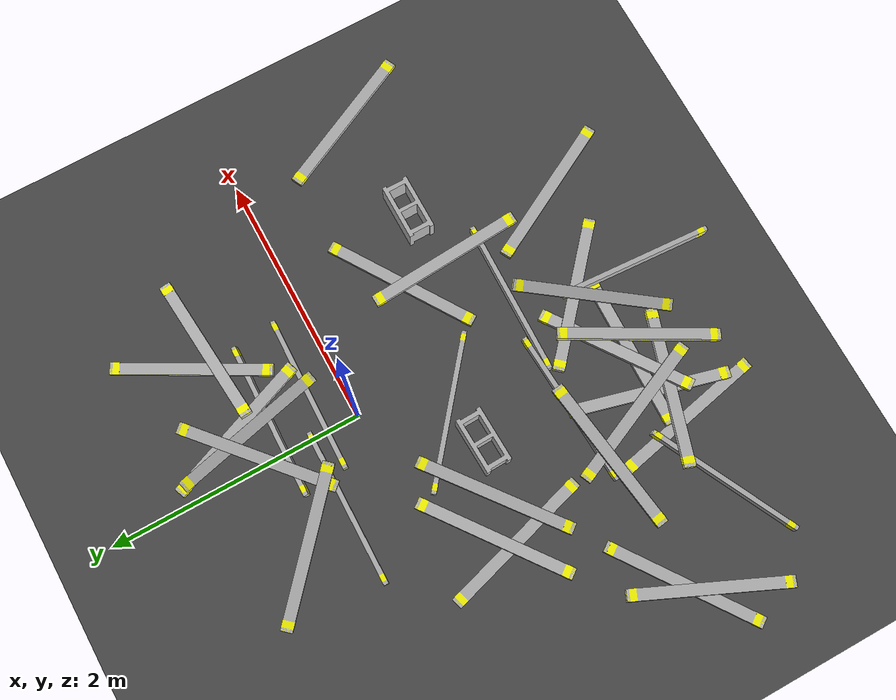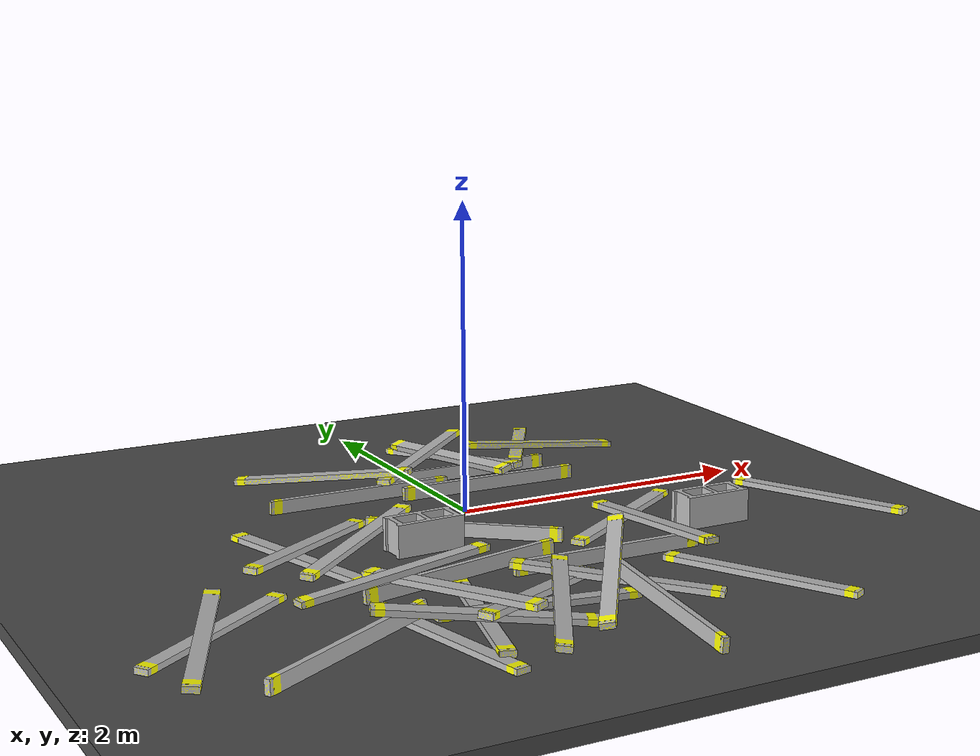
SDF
<sdf version="1.6">
 <world name="default">
  <light name="sun" type="directional">
   <pose>0 0 10 0 -0 0</pose>
   <diffuse>0.8 0.8 0.8 1</diffuse>
   <specular>0.1 0.1 0.1 1</specular>
   <attenuation>
    <range>1000</range>
    <constant>0.9</constant>
    <linear>0.01</linear>
    <quadratic>0.001</quadratic>
   </attenuation>
   <direction>-0.5 0.5 -1</direction>
  </light>
  <model name="ground_plane">
   <static>1</static>
   <link name="link">
    <collision name="collision">
     <geometry><plane><normal>0 0 1</normal><size>100 100</size></plane></geometry>
     <surface><friction><ode><mu>100</mu><mu2>50</mu2></ode></friction></surface>
    </collision>
    <visual name="visual">
     <cast_shadows>0</cast_shadows>
     <geometry><plane><normal>0 0 1</normal><size>100 100</size></plane></geometry>
     <material>
      <script><uri>file://media/materials/scripts/gazebo.material</uri><name>Gazebo/Grey</name></script>
     </material>
    </visual>
   </link>
  </model>
  <gravity>0 0 -9.8</gravity>
  <magnetic_field>6e-06 2.3e-05 -4.2e-05</magnetic_field>
  <atmosphere type="adiabatic"/>
  <physics name="default_physics" default="0" type="ode">
   <max_step_size>0.001</max_step_size>
   <real_time_factor>1</real_time_factor>
   <real_time_update_rate>1000</real_time_update_rate>
  </physics>
  <scene><ambient>0.4 0.4 0.4 1</ambient><background>0.7 0.7 0.7 1</background><shadows>1</shadows></scene>
  <spherical_coordinates>
   <surface_model>EARTH_WGS84</surface_model>
   <latitude_deg>0</latitude_deg>
   <longitude_deg>0</longitude_deg>
   <elevation>0</elevation>
   <heading_deg>0</heading_deg>
  </spherical_coordinates>
  <model name="asphalt_plane">
   <static>1</static>
   <link name="link">
    <collision name="collision"><geometry><box><size>20 20 0.1</size></box></geometry></collision>
    <visual name="visual">
     <cast_shadows>0</cast_shadows>
     <geometry><box><size>20 20 0.1</size></box></geometry>
     <material>
      <script>
       <uri>model://asphalt_plane/materials/scripts</uri>
       <uri>model://asphalt_plane/materials/textures</uri>
       <name>vrc/asphalt</name>
      </script>
     </material>
    </visual>
   </link>
   <pose>-0.111645 0.027228 0 0 -0 0</pose>
  </model>
  <model name="lumber_2x4x48">
   <link name="link">
    <inertial>
     <mass>1.4111</mass>
     <inertia><ixx>0.0011</ixx><ixy>0</ixy><ixz>0</ixz><iyy>0.1771</iyy><iyz>0</iyz><izz>0.1763</izz></inertia>
    </inertial>
    <collision name="collision">
     <geometry><box><size>1.2192 0.038 0.0888</size></box></geometry>
     <surface>
      <bounce><restitution_coefficient>0.01</restitution_coefficient><threshold>5</threshold></bounce>
      <friction><ode><mu>5</mu><mu2>5</mu2></ode></friction>
      <contact>
       <ode>
        <soft_cfm>0.001</soft_cfm>
        <kp>10000</kp>
        <kd>1000</kd>
        <max_vel>0.01</max_vel>
        <min_depth>0.001</min_depth>
       </ode>
      </contact>
     </surface>
    </collision>
    <visual name="visual">
     <geometry><mesh><uri>model://drc_practice_2x4/meshes/2x4x48.dae</uri><scale>1 1 1</scale></mesh></geometry>
    </visual>
   </link>
   <pose>0.297514 0.248297 0.093055 0 0 -0.025615</pose>
  </model>
  <model name="lumber_2x4x48_clone">
   <link name="link">
    <inertial>
     <mass>1.4111</mass>
     <inertia><ixx>0.0011</ixx><ixy>0</ixy><ixz>0</ixz><iyy>0.1771</iyy><iyz>0</iyz><izz>0.1763</izz></inertia>
    </inertial>
    <collision name="collision">
     <geometry><box><size>1.2192 0.038 0.0888</size></box></geometry>
     <surface>
      <bounce><restitution_coefficient>0.01</restitution_coefficient><threshold>5</threshold></bounce>
      <friction><ode><mu>5</mu><mu2>5</mu2></ode></friction>
      <contact>
       <ode>
        <soft_cfm>0.001</soft_cfm>
        <kp>10000</kp>
        <kd>1000</kd>
        <max_vel>0.01</max_vel>
        <min_depth>0.001</min_depth>
       </ode>
      </contact>
     </surface>
    </collision>
    <visual name="visual">
     <geometry><mesh><uri>model://drc_practice_2x4/meshes/2x4x48.dae</uri><scale>1 1 1</scale></mesh></geometry>
    </visual>
   </link>
   <pose>-0.563588 0.384589 0.092772 -0.003394 9.7e-05 -0.013561</pose>
  </model>
  <model name="lumber_2x4x48_clone_1">
   <link name="link">
    <inertial>
     <mass>1.4111</mass>
     <inertia><ixx>0.0011</ixx><ixy>0</ixy><ixz>0</ixz><iyy>0.1771</iyy><iyz>0</iyz><izz>0.1763</izz></inertia>
    </inertial>
    <collision name="collision">
     <geometry><box><size>1.2192 0.038 0.0888</size></box></geometry>
     <surface>
      <bounce><restitution_coefficient>0.01</restitution_coefficient><threshold>5</threshold></bounce>
      <friction><ode><mu>5</mu><mu2>5</mu2></ode></friction>
      <contact>
       <ode>
        <soft_cfm>0.001</soft_cfm>
        <kp>10000</kp>
        <kd>1000</kd>
        <max_vel>0.01</max_vel>
        <min_depth>0.001</min_depth>
       </ode>
      </contact>
     </surface>
    </collision>
    <visual name="visual">
     <geometry><mesh><uri>model://drc_practice_2x4/meshes/2x4x48.dae</uri><scale>1 1 1</scale></mesh></geometry>
    </visual>
   </link>
   <pose>0.259993 0.583404 0.091052 -0.099377 0.00131 -0.023</pose>
  </model>
  <model name="lumber_2x4x48_clone_3_clone">
   <link name="link">
    <inertial>
     <mass>1.4111</mass>
     <inertia><ixx>0.0011</ixx><ixy>0</ixy><ixz>0</ixz><iyy>0.1771</iyy><iyz>0</iyz><izz>0.1763</izz></inertia>
    </inertial>
    <collision name="collision">
     <geometry><box><size>1.2192 0.038 0.0888</size></box></geometry>
     <surface>
      <bounce><restitution_coefficient>0.01</restitution_coefficient><threshold>5</threshold></bounce>
      <friction><ode><mu>5</mu><mu2>5</mu2></ode></friction>
      <contact>
       <ode>
        <soft_cfm>0.001</soft_cfm>
        <kp>10000</kp>
        <kd>1000</kd>
        <max_vel>0.01</max_vel>
        <min_depth>0.001</min_depth>
       </ode>
      </contact>
     </surface>
    </collision>
    <visual name="visual">
     <geometry><mesh><uri>model://drc_practice_2x4/meshes/2x4x48.dae</uri><scale>1 1 1</scale></mesh></geometry>
    </visual>
   </link>
   <pose>-0.673883 0.752799 0.140814 1.59271 -0.119332 -0.740059</pose>
  </model>
  <model name="lumber_2x4x48_clone_3_clone_0">
   <link name="link">
    <inertial>
     <mass>1.4111</mass>
     <inertia><ixx>0.0011</ixx><ixy>0</ixy><ixz>0</ixz><iyy>0.1771</iyy><iyz>0</iyz><izz>0.1763</izz></inertia>
    </inertial>
    <collision name="collision">
     <geometry><box><size>1.2192 0.038 0.0888</size></box></geometry>
     <surface>
      <bounce><restitution_coefficient>0.01</restitution_coefficient><threshold>5</threshold></bounce>
      <friction><ode><mu>5</mu><mu2>5</mu2></ode></friction>
      <contact>
       <ode>
        <soft_cfm>0.001</soft_cfm>
        <kp>10000</kp>
        <kd>1000</kd>
        <max_vel>0.01</max_vel>
        <min_depth>0.001</min_depth>
       </ode>
      </contact>
     </surface>
    </collision>
    <visual name="visual">
     <geometry><mesh><uri>model://drc_practice_2x4/meshes/2x4x48.dae</uri><scale>1 1 1</scale></mesh></geometry>
    </visual>
   </link>
   <pose>0.053443 0.776744 0.177458 1.48105 -0.03515 0.721091</pose>
  </model>
  <model name="lumber_2x4x48_clone_1_clone">
   <link name="link">
    <inertial>
     <mass>1.4111</mass>
     <inertia><ixx>0.0011</ixx><ixy>0</ixy><ixz>0</ixz><iyy>0.1771</iyy><iyz>0</iyz><izz>0.1763</izz></inertia>
    </inertial>
    <collision name="collision">
     <geometry><box><size>1.2192 0.038 0.0888</size></box></geometry>
     <surface>
      <bounce><restitution_coefficient>0.01</restitution_coefficient><threshold>5</threshold></bounce>
      <friction><ode><mu>5</mu><mu2>5</mu2></ode></friction>
      <contact>
       <ode>
        <soft_cfm>0.001</soft_cfm>
        <kp>10000</kp>
        <kd>1000</kd>
        <max_vel>0.01</max_vel>
        <min_depth>0.001</min_depth>
       </ode>
      </contact>
     </surface>
    </collision>
    <visual name="visual">
     <geometry><mesh><uri>model://drc_practice_2x4/meshes/2x4x48.dae</uri><scale>1 1 1</scale></mesh></geometry>
    </visual>
   </link>
   <pose>-0.549988 -1.97698 0.098562 -1.58522 0.049913 -0.035043</pose>
  </model>
  <model name="lumber_2x4x48_clone_3_clone_0_clone_0_clone">
   <link name="link">
    <inertial>
     <mass>1.4111</mass>
     <inertia><ixx>0.0011</ixx><ixy>0</ixy><ixz>0</ixz><iyy>0.1771</iyy><iyz>0</iyz><izz>0.1763</izz></inertia>
    </inertial>
    <collision name="collision">
     <geometry><box><size>1.2192 0.038 0.0888</size></box></geometry>
     <surface>
      <bounce><restitution_coefficient>0.01</restitution_coefficient><threshold>5</threshold></bounce>
      <friction><ode><mu>5</mu><mu2>5</mu2></ode></friction>
      <contact>
       <ode>
        <soft_cfm>0.001</soft_cfm>
        <kp>10000</kp>
        <kd>1000</kd>
        <max_vel>0.01</max_vel>
        <min_depth>0.001</min_depth>
       </ode>
      </contact>
     </surface>
    </collision>
    <visual name="visual">
     <geometry><mesh><uri>model://drc_practice_2x4/meshes/2x4x48.dae</uri><scale>1 1 1</scale></mesh></geometry>
    </visual>
   </link>
   <pose>-0.493762 -1.87892 0.127584 1.58993 0.099827 0.591171</pose>
  </model>
  <model name="lumber_2x4x48_clone_3_clone_0_clone_0_clone_0">
   <link name="link">
    <inertial>
     <mass>1.4111</mass>
     <inertia><ixx>0.0011</ixx><ixy>0</ixy><ixz>0</ixz><iyy>0.1771</iyy><iyz>0</iyz><izz>0.1763</izz></inertia>
    </inertial>
    <collision name="collision">
     <geometry><box><size>1.2192 0.038 0.0888</size></box></geometry>
     <surface>
      <bounce><restitution_coefficient>0.01</restitution_coefficient><threshold>5</threshold></bounce>
      <friction><ode><mu>5</mu><mu2>5</mu2></ode></friction>
      <contact>
       <ode>
        <soft_cfm>0.001</soft_cfm>
        <kp>10000</kp>
        <kd>1000</kd>
        <max_vel>0.01</max_vel>
        <min_depth>0.001</min_depth>
       </ode>
      </contact>
     </surface>
    </collision>
    <visual name="visual">
     <geometry><mesh><uri>model://drc_practice_2x4/meshes/2x4x48.dae</uri><scale>1 1 1</scale></mesh></geometry>
    </visual>
   </link>
   <pose>0.022921 -1.83228 0.107711 1.57632 -0.066092 2.41368</pose>
  </model>
  <model name="lumber_2x4x48_clone_3_clone_0_clone_0_clone_0_clone">
   <link name="link">
    <inertial>
     <mass>1.4111</mass>
     <inertia><ixx>0.0011</ixx><ixy>0</ixy><ixz>0</ixz><iyy>0.1771</iyy><iyz>0</iyz><izz>0.1763</izz></inertia>
    </inertial>
    <collision name="collision">
     <geometry><box><size>1.2192 0.038 0.0888</size></box></geometry>
     <surface>
      <bounce><restitution_coefficient>0.01</restitution_coefficient><threshold>5</threshold></bounce>
      <friction><ode><mu>5</mu><mu2>5</mu2></ode></friction>
      <contact>
       <ode>
        <soft_cfm>0.001</soft_cfm>
        <kp>10000</kp>
        <kd>1000</kd>
        <max_vel>0.01</max_vel>
        <min_depth>0.001</min_depth>
       </ode>
      </contact>
     </surface>
    </collision>
    <visual name="visual">
     <geometry><mesh><uri>model://drc_practice_2x4/meshes/2x4x48.dae</uri><scale>1 1 1</scale></mesh></geometry>
    </visual>
   </link>
   <pose>-0.920274 -2.08214 0.138076 1.49302 -0.112652 2.81049</pose>
  </model>
  <model name="lumber_2x4x48_clone_0_clone">
   <link name="link">
    <inertial>
     <mass>1.4111</mass>
     <inertia><ixx>0.0011</ixx><ixy>0</ixy><ixz>0</ixz><iyy>0.1771</iyy><iyz>0</iyz><izz>0.1763</izz></inertia>
    </inertial>
    <collision name="collision">
     <geometry><box><size>1.2192 0.038 0.0888</size></box></geometry>
     <surface>
      <bounce><restitution_coefficient>0.01</restitution_coefficient><threshold>5</threshold></bounce>
      <friction><ode><mu>5</mu><mu2>5</mu2></ode></friction>
      <contact>
       <ode>
        <soft_cfm>0.001</soft_cfm>
        <kp>10000</kp>
        <kd>1000</kd>
        <max_vel>0.01</max_vel>
        <min_depth>0.001</min_depth>
       </ode>
      </contact>
     </surface>
    </collision>
    <visual name="visual">
     <geometry><mesh><uri>model://drc_practice_2x4/meshes/2x4x48.dae</uri><scale>1 1 1</scale></mesh></geometry>
    </visual>
   </link>
   <pose>-0.710721 -1.36611 0.129166 -0.044502 -0.059215 0.07186</pose>
  </model>
  <model name="lumber_2x4x48_clone_0_clone_0">
   <link name="link">
    <inertial>
     <mass>1.4111</mass>
     <inertia><ixx>0.0011</ixx><ixy>0</ixy><ixz>0</ixz><iyy>0.1771</iyy><iyz>0</iyz><izz>0.1763</izz></inertia>
    </inertial>
    <collision name="collision">
     <geometry><box><size>1.2192 0.038 0.0888</size></box></geometry>
     <surface>
      <bounce><restitution_coefficient>0.01</restitution_coefficient><threshold>5</threshold></bounce>
      <friction><ode><mu>5</mu><mu2>5</mu2></ode></friction>
      <contact>
       <ode>
        <soft_cfm>0.001</soft_cfm>
        <kp>10000</kp>
        <kd>1000</kd>
        <max_vel>0.01</max_vel>
        <min_depth>0.001</min_depth>
       </ode>
      </contact>
     </surface>
    </collision>
    <visual name="visual">
     <geometry><mesh><uri>model://drc_practice_2x4/meshes/2x4x48.dae</uri><scale>1 1 1</scale></mesh></geometry>
    </visual>
   </link>
   <pose>0.225297 -1.40197 0.092847 -0.007699 0.000262 -0.02158</pose>
  </model>
  <model name="lumber_2x4x48_clone_3_clone_0_clone_1_clone">
   <link name="link">
    <inertial>
     <mass>1.4111</mass>
     <inertia><ixx>0.0011</ixx><ixy>0</ixy><ixz>0</ixz><iyy>0.1771</iyy><iyz>0</iyz><izz>0.1763</izz></inertia>
    </inertial>
    <collision name="collision">
     <geometry><box><size>1.2192 0.038 0.0888</size></box></geometry>
     <surface>
      <bounce><restitution_coefficient>0.01</restitution_coefficient><threshold>5</threshold></bounce>
      <friction><ode><mu>5</mu><mu2>5</mu2></ode></friction>
      <contact>
       <ode>
        <soft_cfm>0.001</soft_cfm>
        <kp>10000</kp>
        <kd>1000</kd>
        <max_vel>0.01</max_vel>
        <min_depth>0.001</min_depth>
       </ode>
      </contact>
     </surface>
    </collision>
    <visual name="visual">
     <geometry><mesh><uri>model://drc_practice_2x4/meshes/2x4x48.dae</uri><scale>1 1 1</scale></mesh></geometry>
    </visual>
   </link>
   <pose>-0.878042 -1.94517 0.081087 1.60414 0.025548 1.31325</pose>
  </model>
  <model name="lumber_2x4x48_clone_3_clone_0_clone_1_clone_clone">
   <link name="link">
    <inertial>
     <mass>1.4111</mass>
     <inertia><ixx>0.0011</ixx><ixy>0</ixy><ixz>0</ixz><iyy>0.1771</iyy><iyz>0</iyz><izz>0.1763</izz></inertia>
    </inertial>
    <collision name="collision">
     <geometry><box><size>1.2192 0.038 0.0888</size></box></geometry>
     <surface>
      <bounce><restitution_coefficient>0.01</restitution_coefficient><threshold>5</threshold></bounce>
      <friction><ode><mu>5</mu><mu2>5</mu2></ode></friction>
      <contact>
       <ode>
        <soft_cfm>0.001</soft_cfm>
        <kp>10000</kp>
        <kd>1000</kd>
        <max_vel>0.01</max_vel>
        <min_depth>0.001</min_depth>
       </ode>
      </contact>
     </surface>
    </collision>
    <visual name="visual">
     <geometry><mesh><uri>model://drc_practice_2x4/meshes/2x4x48.dae</uri><scale>1 1 1</scale></mesh></geometry>
    </visual>
   </link>
   <pose>0.012018 -2.34739 0.133604 0.030992 -0.0661 1.52363</pose>
  </model>
  <model name="lumber_2x4x48_clone_3_clone_0_clone_1_clone_clone_2">
   <link name="link">
    <inertial>
     <mass>1.4111</mass>
     <inertia><ixx>0.0011</ixx><ixy>0</ixy><ixz>0</ixz><iyy>0.1771</iyy><iyz>0</iyz><izz>0.1763</izz></inertia>
    </inertial>
    <collision name="collision">
     <geometry><box><size>1.2192 0.038 0.0888</size></box></geometry>
     <surface>
      <bounce><restitution_coefficient>0.01</restitution_coefficient><threshold>5</threshold></bounce>
      <friction><ode><mu>5</mu><mu2>5</mu2></ode></friction>
      <contact>
       <ode>
        <soft_cfm>0.001</soft_cfm>
        <kp>10000</kp>
        <kd>1000</kd>
        <max_vel>0.01</max_vel>
        <min_depth>0.001</min_depth>
       </ode>
      </contact>
     </surface>
    </collision>
    <visual name="visual">
     <geometry><mesh><uri>model://drc_practice_2x4/meshes/2x4x48.dae</uri><scale>1 1 1</scale></mesh></geometry>
    </visual>
   </link>
   <pose>-1.6872 -2.07314 0.113039 -0.007854 -0.032759 0.471322</pose>
  </model>
  <model name="lumber_2x4x48_clone_3_clone_0_clone_clone">
   <link name="link">
    <inertial>
     <mass>1.4111</mass>
     <inertia><ixx>0.0011</ixx><ixy>0</ixy><ixz>0</ixz><iyy>0.1771</iyy><iyz>0</iyz><izz>0.1763</izz></inertia>
    </inertial>
    <collision name="collision">
     <geometry><box><size>1.2192 0.038 0.0888</size></box></geometry>
     <surface>
      <bounce><restitution_coefficient>0.01</restitution_coefficient><threshold>5</threshold></bounce>
      <friction><ode><mu>5</mu><mu2>5</mu2></ode></friction>
      <contact>
       <ode>
        <soft_cfm>0.001</soft_cfm>
        <kp>10000</kp>
        <kd>1000</kd>
        <max_vel>0.01</max_vel>
        <min_depth>0.001</min_depth>
       </ode>
      </contact>
     </surface>
    </collision>
    <visual name="visual">
     <geometry><mesh><uri>model://drc_practice_2x4/meshes/2x4x48.dae</uri><scale>1 1 1</scale></mesh></geometry>
    </visual>
   </link>
   <pose>-2.18032 -1.45176 0.067309 1.57859 -0.000151 0.618251</pose>
  </model>
  <model name="lumber_2x4x48_clone_3_clone_0_clone_1_clone_clone_4">
   <link name="link">
    <inertial>
     <mass>1.4111</mass>
     <inertia><ixx>0.0011</ixx><ixy>0</ixy><ixz>0</ixz><iyy>0.1771</iyy><iyz>0</iyz><izz>0.1763</izz></inertia>
    </inertial>
    <collision name="collision">
     <geometry><box><size>1.2192 0.038 0.0888</size></box></geometry>
     <surface>
      <bounce><restitution_coefficient>0.01</restitution_coefficient><threshold>5</threshold></bounce>
      <friction><ode><mu>5</mu><mu2>5</mu2></ode></friction>
      <contact>
       <ode>
        <soft_cfm>0.001</soft_cfm>
        <kp>10000</kp>
        <kd>1000</kd>
        <max_vel>0.01</max_vel>
        <min_depth>0.001</min_depth>
       </ode>
      </contact>
     </surface>
    </collision>
    <visual name="visual">
     <geometry><mesh><uri>model://drc_practice_2x4/meshes/2x4x48.dae</uri><scale>1 1 1</scale></mesh></geometry>
    </visual>
   </link>
   <pose>-0.995869 -0.581913 0.12892 1.58226 -0.058795 0.668529</pose>
  </model>
  <model name="lumber_2x4x48_clone_3_clone_0_clone_1_clone_0">
   <link name="link">
    <inertial>
     <mass>1.4111</mass>
     <inertia><ixx>0.0011</ixx><ixy>0</ixy><ixz>0</ixz><iyy>0.1771</iyy><iyz>0</iyz><izz>0.1763</izz></inertia>
    </inertial>
    <collision name="collision">
     <geometry><box><size>1.2192 0.038 0.0888</size></box></geometry>
     <surface>
      <bounce><restitution_coefficient>0.01</restitution_coefficient><threshold>5</threshold></bounce>
      <friction><ode><mu>5</mu><mu2>5</mu2></ode></friction>
      <contact>
       <ode>
        <soft_cfm>0.001</soft_cfm>
        <kp>10000</kp>
        <kd>1000</kd>
        <max_vel>0.01</max_vel>
        <min_depth>0.001</min_depth>
       </ode>
      </contact>
     </surface>
    </collision>
    <visual name="visual">
     <geometry><mesh><uri>model://drc_practice_2x4/meshes/2x4x48.dae</uri><scale>1 1 1</scale></mesh></geometry>
    </visual>
   </link>
   <pose>0.255826 0.753088 0.153641 1.34077 0.061831 1.78672</pose>
  </model>
  <model name="lumber_2x4x48_clone_3_clone_0_clone_clone_0_clone_0">
   <link name="link">
    <inertial>
     <mass>1.4111</mass>
     <inertia><ixx>0.0011</ixx><ixy>0</ixy><ixz>0</ixz><iyy>0.1771</iyy><iyz>0</iyz><izz>0.1763</izz></inertia>
    </inertial>
    <collision name="collision">
     <geometry><box><size>1.2192 0.038 0.0888</size></box></geometry>
     <surface>
      <bounce><restitution_coefficient>0.01</restitution_coefficient><threshold>5</threshold></bounce>
      <friction><ode><mu>5</mu><mu2>5</mu2></ode></friction>
      <contact>
       <ode>
        <soft_cfm>0.001</soft_cfm>
        <kp>10000</kp>
        <kd>1000</kd>
        <max_vel>0.01</max_vel>
        <min_depth>0.001</min_depth>
       </ode>
      </contact>
     </surface>
    </collision>
    <visual name="visual">
     <geometry><mesh><uri>model://drc_practice_2x4/meshes/2x4x48.dae</uri><scale>1 1 1</scale></mesh></geometry>
    </visual>
   </link>
   <pose>-0.960595 -1.75261 0.188648 -1.5285 -0.056924 -1.15048</pose>
  </model>
  <model name="lumber_2x4x48_clone_3_clone_0_clone_clone_0_clone_0_clone_2">
   <link name="link">
    <inertial>
     <mass>1.4111</mass>
     <inertia><ixx>0.0011</ixx><ixy>0</ixy><ixz>0</ixz><iyy>0.1771</iyy><iyz>0</iyz><izz>0.1763</izz></inertia>
    </inertial>
    <collision name="collision">
     <geometry><box><size>1.2192 0.038 0.0888</size></box></geometry>
     <surface>
      <bounce><restitution_coefficient>0.01</restitution_coefficient><threshold>5</threshold></bounce>
      <friction><ode><mu>5</mu><mu2>5</mu2></ode></friction>
      <contact>
       <ode>
        <soft_cfm>0.001</soft_cfm>
        <kp>10000</kp>
        <kd>1000</kd>
        <max_vel>0.01</max_vel>
        <min_depth>0.001</min_depth>
       </ode>
      </contact>
     </surface>
    </collision>
    <visual name="visual">
     <geometry><mesh><uri>model://drc_practice_2x4/meshes/2x4x48.dae</uri><scale>1 1 1</scale></mesh></geometry>
    </visual>
   </link>
   <pose>-1.16338 -2.10271 0.066543 -1.58552 0.000665 -1.35832</pose>
  </model>
  <model name="lumber_2x4x48_clone_3_clone_0_clone_clone_0_clone_0_clone_5">
   <link name="link">
    <inertial>
     <mass>1.4111</mass>
     <inertia><ixx>0.0011</ixx><ixy>0</ixy><ixz>0</ixz><iyy>0.1771</iyy><iyz>0</iyz><izz>0.1763</izz></inertia>
    </inertial>
    <collision name="collision">
     <geometry><box><size>1.2192 0.038 0.0888</size></box></geometry>
     <surface>
      <bounce><restitution_coefficient>0.01</restitution_coefficient><threshold>5</threshold></bounce>
      <friction><ode><mu>5</mu><mu2>5</mu2></ode></friction>
      <contact>
       <ode>
        <soft_cfm>0.001</soft_cfm>
        <kp>10000</kp>
        <kd>1000</kd>
        <max_vel>0.01</max_vel>
        <min_depth>0.001</min_depth>
       </ode>
      </contact>
     </surface>
    </collision>
    <visual name="visual">
     <geometry><mesh><uri>model://drc_practice_2x4/meshes/2x4x48.dae</uri><scale>1 1 1</scale></mesh></geometry>
    </visual>
   </link>
   <pose>2.07157 -0.974603 0.067655 -1.5708 -0 -1.1225</pose>
  </model>
  <model name="lumber_2x4x48_clone_3_clone_0_clone_clone_0_clone_0_clone_8">
   <link name="link">
    <inertial>
     <mass>1.4111</mass>
     <inertia><ixx>0.0011</ixx><ixy>0</ixy><ixz>0</ixz><iyy>0.1771</iyy><iyz>0</iyz><izz>0.1763</izz></inertia>
    </inertial>
    <collision name="collision">
     <geometry><box><size>1.2192 0.038 0.0888</size></box></geometry>
     <surface>
      <bounce><restitution_coefficient>0.01</restitution_coefficient><threshold>5</threshold></bounce>
      <friction><ode><mu>5</mu><mu2>5</mu2></ode></friction>
      <contact>
       <ode>
        <soft_cfm>0.001</soft_cfm>
        <kp>10000</kp>
        <kd>1000</kd>
        <max_vel>0.01</max_vel>
        <min_depth>0.001</min_depth>
       </ode>
      </contact>
     </surface>
    </collision>
    <visual name="visual">
     <geometry><mesh><uri>model://drc_practice_2x4/meshes/2x4x48.dae</uri><scale>1 1 1</scale></mesh></geometry>
    </visual>
   </link>
   <pose>0.824481 -2.07584 0.067655 1.5708 0 -1.08065</pose>
  </model>
  <model name="lumber_2x4x48_clone_3_clone_0_clone_clone_0_clone_0_clone_9">
   <link name="link">
    <inertial>
     <mass>1.4111</mass>
     <inertia><ixx>0.0011</ixx><ixy>0</ixy><ixz>0</ixz><iyy>0.1771</iyy><iyz>0</iyz><izz>0.1763</izz></inertia>
    </inertial>
    <collision name="collision">
     <geometry><box><size>1.2192 0.038 0.0888</size></box></geometry>
     <surface>
      <bounce><restitution_coefficient>0.01</restitution_coefficient><threshold>5</threshold></bounce>
      <friction><ode><mu>5</mu><mu2>5</mu2></ode></friction>
      <contact>
       <ode>
        <soft_cfm>0.001</soft_cfm>
        <kp>10000</kp>
        <kd>1000</kd>
        <max_vel>0.01</max_vel>
        <min_depth>0.001</min_depth>
       </ode>
      </contact>
     </surface>
    </collision>
    <visual name="visual">
     <geometry><mesh><uri>model://drc_practice_2x4/meshes/2x4x48.dae</uri><scale>1 1 1</scale></mesh></geometry>
    </visual>
   </link>
   <pose>-1.35675 -0.559076 0.067185 -1.57326 9.6e-05 -1.28583</pose>
  </model>
  <model name="lumber_2x4x48_clone_3_clone_0_clone_clone_0_clone_0_clone_10">
   <link name="link">
    <inertial>
     <mass>1.4111</mass>
     <inertia><ixx>0.0011</ixx><ixy>0</ixy><ixz>0</ixz><iyy>0.1771</iyy><iyz>0</iyz><izz>0.1763</izz></inertia>
    </inertial>
    <collision name="collision">
     <geometry><box><size>1.2192 0.038 0.0888</size></box></geometry>
     <surface>
      <bounce><restitution_coefficient>0.01</restitution_coefficient><threshold>5</threshold></bounce>
      <friction><ode><mu>5</mu><mu2>5</mu2></ode></friction>
      <contact>
       <ode>
        <soft_cfm>0.001</soft_cfm>
        <kp>10000</kp>
        <kd>1000</kd>
        <max_vel>0.01</max_vel>
        <min_depth>0.001</min_depth>
       </ode>
      </contact>
     </surface>
    </collision>
    <visual name="visual">
     <geometry><mesh><uri>model://drc_practice_2x4/meshes/2x4x48.dae</uri><scale>1 1 1</scale></mesh></geometry>
    </visual>
   </link>
   <pose>0.313229 0.823277 0.123721 -1.57637 -0.092682 -1.22255</pose>
  </model>
  <model name="lumber_2x4x48_clone_3_clone_0_clone_clone_0_clone_0_clone_11_clone">
   <link name="link">
    <inertial>
     <mass>1.4111</mass>
     <inertia><ixx>0.0011</ixx><ixy>0</ixy><ixz>0</ixz><iyy>0.1771</iyy><iyz>0</iyz><izz>0.1763</izz></inertia>
    </inertial>
    <collision name="collision">
     <geometry><box><size>1.2192 0.038 0.0888</size></box></geometry>
     <surface>
      <bounce><restitution_coefficient>0.01</restitution_coefficient><threshold>5</threshold></bounce>
      <friction><ode><mu>5</mu><mu2>5</mu2></ode></friction>
      <contact>
       <ode>
        <soft_cfm>0.001</soft_cfm>
        <kp>10000</kp>
        <kd>1000</kd>
        <max_vel>0.01</max_vel>
        <min_depth>0.001</min_depth>
       </ode>
      </contact>
     </surface>
    </collision>
    <visual name="visual">
     <geometry><mesh><uri>model://drc_practice_2x4/meshes/2x4x48.dae</uri><scale>1 1 1</scale></mesh></geometry>
    </visual>
   </link>
   <pose>-0.067934 -1.92667 0.203005 1.74837 0.182549 -2.15095</pose>
  </model>
  <model name="lumber_2x4x48_clone_3_clone_0_clone_clone_0_clone_0_clone_11_clone_4">
   <link name="link">
    <inertial>
     <mass>1.4111</mass>
     <inertia><ixx>0.0011</ixx><ixy>0</ixy><ixz>0</ixz><iyy>0.1771</iyy><iyz>0</iyz><izz>0.1763</izz></inertia>
    </inertial>
    <collision name="collision">
     <geometry><box><size>1.2192 0.038 0.0888</size></box></geometry>
     <surface>
      <bounce><restitution_coefficient>0.01</restitution_coefficient><threshold>5</threshold></bounce>
      <friction><ode><mu>5</mu><mu2>5</mu2></ode></friction>
      <contact>
       <ode>
        <soft_cfm>0.001</soft_cfm>
        <kp>10000</kp>
        <kd>1000</kd>
        <max_vel>0.01</max_vel>
        <min_depth>0.001</min_depth>
       </ode>
      </contact>
     </surface>
    </collision>
    <visual name="visual">
     <geometry><mesh><uri>model://drc_practice_2x4/meshes/2x4x48.dae</uri><scale>1 1 1</scale></mesh></geometry>
    </visual>
   </link>
   <pose>-0.475646 -2.08691 0.138437 -1.69515 0.061654 -2.06401</pose>
  </model>
  <model name="lumber_2x4x48_clone_3_clone_0_clone_clone_0_clone_0_clone_11_clone_11">
   <link name="link">
    <inertial>
     <mass>1.4111</mass>
     <inertia><ixx>0.0011</ixx><ixy>0</ixy><ixz>0</ixz><iyy>0.1771</iyy><iyz>0</iyz><izz>0.1763</izz></inertia>
    </inertial>
    <collision name="collision">
     <geometry><box><size>1.2192 0.038 0.0888</size></box></geometry>
     <surface>
      <bounce><restitution_coefficient>0.01</restitution_coefficient><threshold>5</threshold></bounce>
      <friction><ode><mu>5</mu><mu2>5</mu2></ode></friction>
      <contact>
       <ode>
        <soft_cfm>0.001</soft_cfm>
        <kp>10000</kp>
        <kd>1000</kd>
        <max_vel>0.01</max_vel>
        <min_depth>0.001</min_depth>
       </ode>
      </contact>
     </surface>
    </collision>
    <visual name="visual">
     <geometry><mesh><uri>model://drc_practice_2x4/meshes/2x4x48.dae</uri><scale>1 1 1</scale></mesh></geometry>
    </visual>
   </link>
   <pose>0.871175 0.91451 0.117213 1.59522 -0.080618 -2.09512</pose>
  </model>
  <model name="lumber_2x4x48_clone_3_clone_0_clone_clone_0_clone_0_clone_11_clone_13">
   <link name="link">
    <inertial>
     <mass>1.4111</mass>
     <inertia><ixx>0.0011</ixx><ixy>0</ixy><ixz>0</ixz><iyy>0.1771</iyy><iyz>0</iyz><izz>0.1763</izz></inertia>
    </inertial>
    <collision name="collision">
     <geometry><box><size>1.2192 0.038 0.0888</size></box></geometry>
     <surface>
      <bounce><restitution_coefficient>0.01</restitution_coefficient><threshold>5</threshold></bounce>
      <friction><ode><mu>5</mu><mu2>5</mu2></ode></friction>
      <contact>
       <ode>
        <soft_cfm>0.001</soft_cfm>
        <kp>10000</kp>
        <kd>1000</kd>
        <max_vel>0.01</max_vel>
        <min_depth>0.001</min_depth>
       </ode>
      </contact>
     </surface>
    </collision>
    <visual name="visual">
     <geometry><mesh><uri>model://drc_practice_2x4/meshes/2x4x48.dae</uri><scale>1 1 1</scale></mesh></geometry>
    </visual>
   </link>
   <pose>0.717386 -0.748641 0.067518 1.57416 -2e-05 -2.56665</pose>
  </model>
  <model name="lumber_2x4x48_clone_3_clone_0_clone_clone_0_clone_0_clone_11_clone_14_clone_clone_1">
   <link name="link">
    <inertial>
     <mass>1.4111</mass>
     <inertia><ixx>0.0011</ixx><ixy>0</ixy><ixz>0</ixz><iyy>0.1771</iyy><iyz>0</iyz><izz>0.1763</izz></inertia>
    </inertial>
    <collision name="collision">
     <geometry><box><size>1.2192 0.038 0.0888</size></box></geometry>
     <surface>
      <bounce><restitution_coefficient>0.01</restitution_coefficient><threshold>5</threshold></bounce>
      <friction><ode><mu>5</mu><mu2>5</mu2></ode></friction>
      <contact>
       <ode>
        <soft_cfm>0.001</soft_cfm>
        <kp>10000</kp>
        <kd>1000</kd>
        <max_vel>0.01</max_vel>
        <min_depth>0.001</min_depth>
       </ode>
      </contact>
     </surface>
    </collision>
    <visual name="visual">
     <geometry><mesh><uri>model://drc_practice_2x4/meshes/2x4x48.dae</uri><scale>1 1 1</scale></mesh></geometry>
    </visual>
   </link>
   <pose>0.949143 0.758941 0.150362 1.57268 -0.135925 -3.05049</pose>
  </model>
  <model name="lumber_2x4x48_clone_3_clone_0_clone_clone_0_clone_0_clone_11_clone_14_clone_clone_5">
   <link name="link">
    <inertial>
     <mass>1.4111</mass>
     <inertia><ixx>0.0011</ixx><ixy>0</ixy><ixz>0</ixz><iyy>0.1771</iyy><iyz>0</iyz><izz>0.1763</izz></inertia>
    </inertial>
    <collision name="collision">
     <geometry><box><size>1.2192 0.038 0.0888</size></box></geometry>
     <surface>
      <bounce><restitution_coefficient>0.01</restitution_coefficient><threshold>5</threshold></bounce>
      <friction><ode><mu>5</mu><mu2>5</mu2></ode></friction>
      <contact>
       <ode>
        <soft_cfm>0.001</soft_cfm>
        <kp>10000</kp>
        <kd>1000</kd>
        <max_vel>0.01</max_vel>
        <min_depth>0.001</min_depth>
       </ode>
      </contact>
     </surface>
    </collision>
    <visual name="visual">
     <geometry><mesh><uri>model://drc_practice_2x4/meshes/2x4x48.dae</uri><scale>1 1 1</scale></mesh></geometry>
    </visual>
   </link>
   <pose>-1.14355 -1.42818 0.202139 1.61229 0.064739 -2.99232</pose>
  </model>
  <model name="lumber_2x4x48_clone_3_clone_0_clone_clone_0_clone_0_clone_11_clone_clone_0">
   <link name="link">
    <inertial>
     <mass>1.4111</mass>
     <inertia><ixx>0.0011</ixx><ixy>0</ixy><ixz>0</ixz><iyy>0.1771</iyy><iyz>0</iyz><izz>0.1763</izz></inertia>
    </inertial>
    <collision name="collision">
     <geometry><box><size>1.2192 0.038 0.0888</size></box></geometry>
     <surface>
      <bounce><restitution_coefficient>0.01</restitution_coefficient><threshold>5</threshold></bounce>
      <friction><ode><mu>5</mu><mu2>5</mu2></ode></friction>
      <contact>
       <ode>
        <soft_cfm>0.001</soft_cfm>
        <kp>10000</kp>
        <kd>1000</kd>
        <max_vel>0.01</max_vel>
        <min_depth>0.001</min_depth>
       </ode>
      </contact>
     </surface>
    </collision>
    <visual name="visual">
     <geometry><mesh><uri>model://drc_practice_2x4/meshes/2x4x48.dae</uri><scale>1 1 1</scale></mesh></geometry>
    </visual>
   </link>
   <pose>-2.29318 -1.59687 0.101836 1.48713 0.049646 -1.98879</pose>
  </model>
  <model name="lumber_2x4x48_clone_3_clone_0_clone_clone_0_clone_0_clone_0_clone_2">
   <link name="link">
    <inertial>
     <mass>1.4111</mass>
     <inertia><ixx>0.0011</ixx><ixy>0</ixy><ixz>0</ixz><iyy>0.1771</iyy><iyz>0</iyz><izz>0.1763</izz></inertia>
    </inertial>
    <collision name="collision">
     <geometry><box><size>1.2192 0.038 0.0888</size></box></geometry>
     <surface>
      <bounce><restitution_coefficient>0.01</restitution_coefficient><threshold>5</threshold></bounce>
      <friction><ode><mu>5</mu><mu2>5</mu2></ode></friction>
      <contact>
       <ode>
        <soft_cfm>0.001</soft_cfm>
        <kp>10000</kp>
        <kd>1000</kd>
        <max_vel>0.01</max_vel>
        <min_depth>0.001</min_depth>
       </ode>
      </contact>
     </surface>
    </collision>
    <visual name="visual">
     <geometry><mesh><uri>model://drc_practice_2x4/meshes/2x4x48.dae</uri><scale>1 1 1</scale></mesh></geometry>
    </visual>
   </link>
   <pose>0.713028 -1.11204 0.133735 -1.57594 -0.070548 -1.52205</pose>
  </model>
  <model name="lumber_2x4x48_clone_3_clone_0_clone_clone_0_clone">
   <link name="link">
    <inertial>
     <mass>1.4111</mass>
     <inertia><ixx>0.0011</ixx><ixy>0</ixy><ixz>0</ixz><iyy>0.1771</iyy><iyz>0</iyz><izz>0.1763</izz></inertia>
    </inertial>
    <collision name="collision">
     <geometry><box><size>1.2192 0.038 0.0888</size></box></geometry>
     <surface>
      <bounce><restitution_coefficient>0.01</restitution_coefficient><threshold>5</threshold></bounce>
      <friction><ode><mu>5</mu><mu2>5</mu2></ode></friction>
      <contact>
       <ode>
        <soft_cfm>0.001</soft_cfm>
        <kp>10000</kp>
        <kd>1000</kd>
        <max_vel>0.01</max_vel>
        <min_depth>0.001</min_depth>
       </ode>
      </contact>
     </surface>
    </collision>
    <visual name="visual">
     <geometry><mesh><uri>model://drc_practice_2x4/meshes/2x4x48.dae</uri><scale>1 1 1</scale></mesh></geometry>
    </visual>
   </link>
   <pose>-1.25825 -0.433793 0.098296 1.58875 0.048741 0.639421</pose>
  </model>
  <model name="lumber_2x4x48_clone_3_clone_0_clone_clone_0_clone_0_clone_11_clone_13_clone">
   <link name="link">
    <inertial>
     <mass>1.4111</mass>
     <inertia><ixx>0.0011</ixx><ixy>0</ixy><ixz>0</ixz><iyy>0.1771</iyy><iyz>0</iyz><izz>0.1763</izz></inertia>
    </inertial>
    <collision name="collision">
     <geometry><box><size>1.2192 0.038 0.0888</size></box></geometry>
     <surface>
      <bounce><restitution_coefficient>0.01</restitution_coefficient><threshold>5</threshold></bounce>
      <friction><ode><mu>5</mu><mu2>5</mu2></ode></friction>
      <contact>
       <ode>
        <soft_cfm>0.001</soft_cfm>
        <kp>10000</kp>
        <kd>1000</kd>
        <max_vel>0.01</max_vel>
        <min_depth>0.001</min_depth>
       </ode>
      </contact>
     </surface>
    </collision>
    <visual name="visual">
     <geometry><mesh><uri>model://drc_practice_2x4/meshes/2x4x48.dae</uri><scale>1 1 1</scale></mesh></geometry>
    </visual>
   </link>
   <pose>-0.307226 -0.587866 0.092881 -0.002256 0.000227 2.45311</pose>
  </model>
  <model name="cinder_block">
   <link name="link">
    <inertial>
     <pose>0 0 0.1016 0 -0 0</pose>
     <mass>5</mass>
     <inertia>
      <ixx>0.028705</ixx>
      <ixy>0</ixy>
      <iyy>0.073708</iyy>
      <ixz>0</ixz>
      <iyz>0</iyz>
      <izz>0.06908</izz>
     </inertia>
    </inertial>
    <visual name="visual">
     <geometry><mesh><uri>model://cinder_block/meshes/cinder_block.dae</uri><scale>1 1 1</scale></mesh></geometry>
    </visual>
    <collision name="left">
     <pose>0 -0.08465 0.1016 0 -0 0</pose>
     <geometry><box><size>0.43495 0.0339 0.2032</size></box></geometry>
     <surface>
      <contact><ode><max_vel>0.1</max_vel><min_depth>0.001</min_depth></ode></contact>
      <friction><ode><mu>1</mu><mu2>1</mu2></ode></friction>
     </surface>
    </collision>
    <collision name="right">
     <pose>0 0.08465 0.1016 0 -0 0</pose>
     <geometry><box><size>0.43495 0.0339 0.2032</size></box></geometry>
     <surface>
      <contact><ode><max_vel>0.1</max_vel><min_depth>0.001</min_depth></ode></contact>
      <friction><ode><mu>1</mu><mu2>1</mu2></ode></friction>
     </surface>
    </collision>
    <collision name="front">
     <pose>0.18625 0 0.1016 0 -0 0</pose>
     <geometry><box><size>0.0339 0.1354 0.203</size></box></geometry>
     <surface>
      <contact><ode><max_vel>0.1</max_vel><min_depth>0.001</min_depth></ode></contact>
      <friction><ode><mu>1</mu><mu2>1</mu2></ode></friction>
     </surface>
    </collision>
    <collision name="middle">
     <pose>0 0 0.1016 0 -0 0</pose>
     <geometry><box><size>0.0339 0.1354 0.203</size></box></geometry>
     <surface>
      <contact><ode><max_vel>0.1</max_vel><min_depth>0.001</min_depth></ode></contact>
      <friction><ode><mu>1</mu><mu2>1</mu2></ode></friction>
     </surface>
    </collision>
    <collision name="back">
     <pose>-0.18625 0 0.1016 0 -0 0</pose>
     <geometry><box><size>0.0339 0.1354 0.203</size></box></geometry>
     <surface>
      <contact><ode><max_vel>0.1</max_vel><min_depth>0.001</min_depth></ode></contact>
      <friction><ode><mu>1</mu><mu2>1</mu2></ode></friction>
     </surface>
    </collision>
   </link>
   <pose>1.17073 -1.05299 0.049453 -0.000843 0.00146 0.000902</pose>
  </model>
  <model name="cinder_block_0">
   <link name="link">
    <inertial>
     <pose>0 0 0.1016 0 -0 0</pose>
     <mass>5</mass>
     <inertia>
      <ixx>0.028705</ixx>
      <ixy>0</ixy>
      <iyy>0.073708</iyy>
      <ixz>0</ixz>
      <iyz>0</iyz>
      <izz>0.06908</izz>
     </inertia>
    </inertial>
    <visual name="visual">
     <geometry><mesh><uri>model://cinder_block/meshes/cinder_block.dae</uri><scale>1 1 1</scale></mesh></geometry>
    </visual>
    <collision name="left">
     <pose>0 -0.08465 0.1016 0 -0 0</pose>
     <geometry><box><size>0.43495 0.0339 0.2032</size></box></geometry>
     <surface>
      <contact><ode><max_vel>0.1</max_vel><min_depth>0.001</min_depth></ode></contact>
      <friction><ode><mu>1</mu><mu2>1</mu2></ode></friction>
     </surface>
    </collision>
    <collision name="right">
     <pose>0 0.08465 0.1016 0 -0 0</pose>
     <geometry><box><size>0.43495 0.0339 0.2032</size></box></geometry>
     <surface>
      <contact><ode><max_vel>0.1</max_vel><min_depth>0.001</min_depth></ode></contact>
      <friction><ode><mu>1</mu><mu2>1</mu2></ode></friction>
     </surface>
    </collision>
    <collision name="front">
     <pose>0.18625 0 0.1016 0 -0 0</pose>
     <geometry><box><size>0.0339 0.1354 0.203</size></box></geometry>
     <surface>
      <contact><ode><max_vel>0.1</max_vel><min_depth>0.001</min_depth></ode></contact>
      <friction><ode><mu>1</mu><mu2>1</mu2></ode></friction>
     </surface>
    </collision>
    <collision name="middle">
     <pose>0 0 0.1016 0 -0 0</pose>
     <geometry><box><size>0.0339 0.1354 0.203</size></box></geometry>
     <surface>
      <contact><ode><max_vel>0.1</max_vel><min_depth>0.001</min_depth></ode></contact>
      <friction><ode><mu>1</mu><mu2>1</mu2></ode></friction>
     </surface>
    </collision>
    <collision name="back">
     <pose>-0.18625 0 0.1016 0 -0 0</pose>
     <geometry><box><size>0.0339 0.1354 0.203</size></box></geometry>
     <surface>
      <contact><ode><max_vel>0.1</max_vel><min_depth>0.001</min_depth></ode></contact>
      <friction><ode><mu>1</mu><mu2>1</mu2></ode></friction>
     </surface>
    </collision>
   </link>
   <pose>-0.62131 -0.692423 0.049978 -4.7e-05 8.6e-05 0.037947</pose>
  </model>
 </world>
</sdf>
